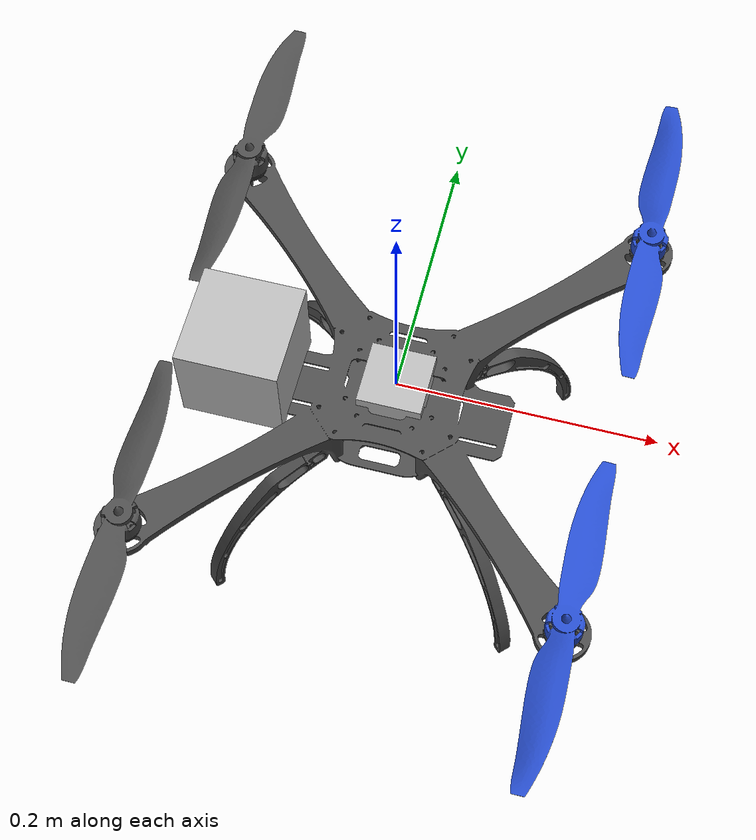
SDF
<sdf version='1.5'>
  <model name='lezl_lidar'>

    <include>
      <uri>model://lezl</uri>
    </include>

    <include>
      <uri>model://camera</uri>
      <pose>0.0 0.0 0 0 1.5708 1.5708</pose>
    </include>

    <joint name="camera_joint" type="revolute">
      <child>camera::link</child>
      <parent>lezl::base_link</parent>
      <axis>
        <xyz>0 0 1</xyz>
        <limit>
          <upper>0</upper>
          <lower>0</lower>
        </limit>
      </axis>
    </joint>

    <include>
      <uri>model://lidar</uri>
      <pose>-0.12 0 0 0 3.1415 0</pose>
    </include>
    <joint name="lidar_joint" type="revolute">
	  <child>lidar::link</child>
	  <parent>iris::base_link</parent>
	  <axis>
	    <xyz>0 0 1</xyz>
	    <limit>
		  <upper>0</upper>
		  <lower>0</lower>
		</limit>
	  </axis>
	</joint>

  </model>
</sdf>

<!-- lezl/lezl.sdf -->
<sdf version='1.6'>
  <model name='lezl'>
    <link name='base_link'>
      <pose frame=''>0 0 0 0 -0 0</pose>
      <inertial>
        <pose frame=''>0 0 0 0 -0 0</pose>
        <mass>1.5</mass>
        <inertia>
          <ixx>0.0347563</ixx>
          <ixy>0</ixy>
          <ixz>0</ixz>
          <iyy>0.0458929</iyy>
          <iyz>0</iyz>
          <izz>0.0977</izz>
        </inertia>
      </inertial>
      <collision name='base_link_inertia_collision'>
        <pose frame=''>0 0 0 0 -0 0</pose>
        <geometry>
          <box>
            <size>0.47 0.47 0.37</size>
          </box>
        </geometry>
        <surface>
          <contact>
            <ode>
              <min_depth>0.001</min_depth>
              <max_vel>0</max_vel>
            </ode>
          </contact>
          <friction>
            <ode/>
          </friction>
        </surface>
      </collision>
      <visual name='base_link_inertia_visual'>
        <pose frame=''>0.018 -0.0265 0 1.57 -0 0</pose>
        <geometry>
          <mesh>
            <scale>0.001 0.001 0.001</scale>
            <uri>model://lezl/meshes/f450_frame.stl</uri>
          </mesh>
        </geometry>
        <material>
          <script>
            <name>Gazebo/DarkGrey</name>
            <uri>file://media/materials/scripts/gazebo.material</uri>
          </script>
        </material>
      </visual>
      <gravity>1</gravity>
      <velocity_decay/>
      <self_collide>0</self_collide>
    </link>
    <link name='/imu_link'>
      <pose frame=''>0 0 0 0 -0 0</pose>
      <inertial>
        <pose frame=''>0 0 0 0 -0 0</pose>
        <mass>0.015</mass>
        <inertia>
          <ixx>1e-05</ixx>
          <ixy>0</ixy>
          <ixz>0</ixz>
          <iyy>1e-05</iyy>
          <iyz>0</iyz>
          <izz>1e-05</izz>
        </inertia>
      </inertial>
    </link>
    <joint name='/imu_joint' type='revolute'>
      <child>/imu_link</child>
      <parent>base_link</parent>
      <axis>
        <xyz>1 0 0</xyz>
        <limit>
          <lower>0</lower>
          <upper>0</upper>
          <effort>0</effort>
          <velocity>0</velocity>
        </limit>
        <dynamics>
          <spring_reference>0</spring_reference>
          <spring_stiffness>0</spring_stiffness>
        </dynamics>
        <use_parent_model_frame>1</use_parent_model_frame>
      </axis>
    </joint>
    <link name='rotor_0'>
      <pose frame=''>0.162 -0.162 0.007 0 -0 0</pose>
      <inertial>
        <pose frame=''>0 0 0 0 -0 0</pose>
        <mass>0.005</mass>
        <inertia>
          <ixx>9.75e-07</ixx>
          <ixy>0</ixy>
          <ixz>0</ixz>
          <iyy>0.000273104</iyy>
          <iyz>0</iyz>
          <izz>0.000274004</izz>
        </inertia>
      </inertial>
      <collision name='rotor_0_collision'>
        <pose frame=''>0 0 0 0 -0 0</pose>
        <geometry>
          <cylinder>
            <length>0.005</length>
            <radius>0.128</radius>
          </cylinder>
        </geometry>
        <surface>
          <contact>
            <ode/>
          </contact>
          <friction>
            <ode/>
          </friction>
        </surface>
      </collision>
      <visual name='rotor_0_visual'>
        <pose frame=''>0 0 0 1.57 -0 0</pose>
        <geometry>
          <mesh>
            <scale>0.001 0.001 0.001</scale>
            <uri>model://lezl/meshes/f450_prop_ccw.stl</uri>
          </mesh>
        </geometry>
        <material>
          <script>
            <name>Gazebo/Blue</name>
            <uri>file://media/materials/scripts/gazebo.material</uri>
          </script>
        </material>
      </visual>
      <gravity>1</gravity>
      <velocity_decay/>
      <self_collide>0</self_collide>
    </link>
    <joint name='rotor_0_joint' type='revolute'>
      <child>rotor_0</child>
      <parent>base_link</parent>
      <axis>
        <xyz>0 0 1</xyz>
        <limit>
          <lower>-1e+16</lower>
          <upper>1e+16</upper>
        </limit>
        <dynamics>
          <spring_reference>0</spring_reference>
          <spring_stiffness>0</spring_stiffness>
        </dynamics>
        <use_parent_model_frame>1</use_parent_model_frame>
      </axis>
    </joint>
    <link name='rotor_1'>
      <pose frame=''>-0.162 0.162 0.007 0 -0 0</pose>
      <inertial>
        <pose frame=''>0 0 0 0 -0 0</pose>
        <mass>0.005</mass>
        <inertia>
          <ixx>9.75e-07</ixx>
          <ixy>0</ixy>
          <ixz>0</ixz>
          <iyy>0.000273104</iyy>
          <iyz>0</iyz>
          <izz>0.000274004</izz>
        </inertia>
      </inertial>
      <collision name='rotor_1_collision'>
        <pose frame=''>0 0 0 0 -0 0</pose>
        <geometry>
          <cylinder>
            <length>0.005</length>
            <radius>0.128</radius>
          </cylinder>
        </geometry>
        <surface>
          <contact>
            <ode/>
          </contact>
          <friction>
            <ode/>
          </friction>
        </surface>
      </collision>
      <visual name='rotor_1_visual'>
        <pose frame=''>0 0 0 1.57 -0 0</pose>
        <geometry>
          <mesh>
            <scale>0.001 0.001 0.001</scale>
            <uri>model://lezl/meshes/f450_prop_ccw.stl</uri>
          </mesh>
        </geometry>
        <material>
          <script>
            <name>Gazebo/DarkGrey</name>
            <uri>file://media/materials/scripts/gazebo.material</uri>
          </script>
        </material>
      </visual>
      <gravity>1</gravity>
      <velocity_decay/>
      <self_collide>0</self_collide>
    </link>
    <joint name='rotor_1_joint' type='revolute'>
      <child>rotor_1</child>
      <parent>base_link</parent>
      <axis>
        <xyz>0 0 1</xyz>
        <limit>
          <lower>-1e+16</lower>
          <upper>1e+16</upper>
        </limit>
        <dynamics>
          <spring_reference>0</spring_reference>
          <spring_stiffness>0</spring_stiffness>
        </dynamics>
        <use_parent_model_frame>1</use_parent_model_frame>
      </axis>
    </joint>
    <link name='rotor_2'>
      <pose frame=''>0.162 0.162 0.007 0 -0 0</pose>
      <inertial>
        <pose frame=''>0 0 0 0 -0 0</pose>
        <mass>0.005</mass>
        <inertia>
          <ixx>9.75e-07</ixx>
          <ixy>0</ixy>
          <ixz>0</ixz>
          <iyy>0.000273104</iyy>
          <iyz>0</iyz>
          <izz>0.000274004</izz>
        </inertia>
      </inertial>
      <collision name='rotor_2_collision'>
        <pose frame=''>0 0 0 0 -0 0</pose>
        <geometry>
          <cylinder>
            <length>0.005</length>
            <radius>0.128</radius>
          </cylinder>
        </geometry>
        <surface>
          <contact>
            <ode/>
          </contact>
          <friction>
            <ode/>
          </friction>
        </surface>
      </collision>
      <visual name='rotor_2_visual'>
        <pose frame=''>0 0 0 1.57 -0 0</pose>
        <geometry>
          <mesh>
            <scale>0.001 0.001 0.001</scale>
            <uri>model://lezl/meshes/f450_prop_cw.stl</uri>
          </mesh>
        </geometry>
        <material>
          <script>
            <name>Gazebo/Blue</name>
            <uri>file://media/materials/scripts/gazebo.material</uri>
          </script>
        </material>
      </visual>
      <gravity>1</gravity>
      <velocity_decay/>
      <self_collide>0</self_collide>
    </link>
    <joint name='rotor_2_joint' type='revolute'>
      <child>rotor_2</child>
      <parent>base_link</parent>
      <axis>
        <xyz>0 0 1</xyz>
        <limit>
          <lower>-1e+16</lower>
          <upper>1e+16</upper>
        </limit>
        <dynamics>
          <spring_reference>0</spring_reference>
          <spring_stiffness>0</spring_stiffness>
        </dynamics>
        <use_parent_model_frame>1</use_parent_model_frame>
      </axis>
    </joint>
    <link name='rotor_3'>
      <pose frame=''>-0.162 -0.162 0.007 0 -0 0</pose>
      <inertial>
        <pose frame=''>0 0 0 0 -0 0</pose>
        <mass>0.005</mass>
        <inertia>
          <ixx>9.75e-07</ixx>
          <ixy>0</ixy>
          <ixz>0</ixz>
          <iyy>0.000273104</iyy>
          <iyz>0</iyz>
          <izz>0.000274004</izz>
        </inertia>
      </inertial>
      <collision name='rotor_3_collision'>
        <pose frame=''>0 0 0 0 -0 0</pose>
        <geometry>
          <cylinder>
            <length>0.005</length>
            <radius>0.128</radius>
          </cylinder>
        </geometry>
        <surface>
          <contact>
            <ode/>
          </contact>
          <friction>
            <ode/>
          </friction>
        </surface>
      </collision>
      <visual name='rotor_3_visual'>
        <pose frame=''>0 0 0 1.57 -0 0</pose>
        <geometry>
          <mesh>
            <scale>0.001 0.001 0.001</scale>
            <uri>model://lezl/meshes/f450_prop_cw.stl</uri>
          </mesh>
        </geometry>
        <material>
          <script>
            <name>Gazebo/DarkGrey</name>
            <uri>file://media/materials/scripts/gazebo.material</uri>
          </script>
        </material>
      </visual>
      <gravity>1</gravity>
      <velocity_decay/>
      <self_collide>0</self_collide>
    </link>
    <joint name='rotor_3_joint' type='revolute'>
      <child>rotor_3</child>
      <parent>base_link</parent>
      <axis>
        <xyz>0 0 1</xyz>
        <limit>
          <lower>-1e+16</lower>
          <upper>1e+16</upper>
        </limit>
        <dynamics>
          <spring_reference>0</spring_reference>
          <spring_stiffness>0</spring_stiffness>
        </dynamics>
        <use_parent_model_frame>1</use_parent_model_frame>
      </axis>
    </joint>
    <plugin name='rosbag' filename='librotors_gazebo_multirotor_base_plugin.so'>
      <robotNamespace/>
      <linkName>base_link</linkName>
      <rotorVelocitySlowdownSim>10</rotorVelocitySlowdownSim>
    </plugin>
    <plugin name='front_right_motor_model' filename='librotors_gazebo_motor_model.so'>
      <robotNamespace/>
      <jointName>rotor_0_joint</jointName>
      <linkName>rotor_0</linkName>
      <turningDirection>ccw</turningDirection>
      <timeConstantUp>0.0125</timeConstantUp>
      <timeConstantDown>0.025</timeConstantDown>
      <maxRotVelocity>1100</maxRotVelocity>
      <motorConstant>8.54858e-06</motorConstant>
      <momentConstant>0.06</momentConstant>
      <commandSubTopic>/gazebo/command/motor_speed</commandSubTopic>
      <motorNumber>0</motorNumber>
      <rotorDragCoefficient>0.000806428</rotorDragCoefficient>
      <rollingMomentCoefficient>1e-06</rollingMomentCoefficient>
      <motorSpeedPubTopic>/motor_speed/0</motorSpeedPubTopic>
      <rotorVelocitySlowdownSim>10</rotorVelocitySlowdownSim>
    </plugin>
    <plugin name='back_left_motor_model' filename='librotors_gazebo_motor_model.so'>
      <robotNamespace/>
      <jointName>rotor_1_joint</jointName>
      <linkName>rotor_1</linkName>
      <turningDirection>ccw</turningDirection>
      <timeConstantUp>0.0125</timeConstantUp>
      <timeConstantDown>0.025</timeConstantDown>
      <maxRotVelocity>1100</maxRotVelocity>
      <motorConstant>8.54858e-06</motorConstant>
      <momentConstant>0.06</momentConstant>
      <commandSubTopic>/gazebo/command/motor_speed</commandSubTopic>
      <motorNumber>1</motorNumber>
      <rotorDragCoefficient>0.000806428</rotorDragCoefficient>
      <rollingMomentCoefficient>1e-06</rollingMomentCoefficient>
      <motorSpeedPubTopic>/motor_speed/1</motorSpeedPubTopic>
      <rotorVelocitySlowdownSim>10</rotorVelocitySlowdownSim>
    </plugin>
    <plugin name='front_left_motor_model' filename='librotors_gazebo_motor_model.so'>
      <robotNamespace/>
      <jointName>rotor_2_joint</jointName>
      <linkName>rotor_2</linkName>
      <turningDirection>cw</turningDirection>
      <timeConstantUp>0.0125</timeConstantUp>
      <timeConstantDown>0.025</timeConstantDown>
      <maxRotVelocity>1100</maxRotVelocity>
      <motorConstant>8.54858e-06</motorConstant>
      <momentConstant>0.06</momentConstant>
      <commandSubTopic>/gazebo/command/motor_speed</commandSubTopic>
      <motorNumber>2</motorNumber>
      <rotorDragCoefficient>0.000806428</rotorDragCoefficient>
      <rollingMomentCoefficient>1e-06</rollingMomentCoefficient>
      <motorSpeedPubTopic>/motor_speed/2</motorSpeedPubTopic>
      <rotorVelocitySlowdownSim>10</rotorVelocitySlowdownSim>
    </plugin>
    <plugin name='back_right_motor_model' filename='librotors_gazebo_motor_model.so'>
      <robotNamespace/>
      <jointName>rotor_3_joint</jointName>
      <linkName>rotor_3</linkName>
      <turningDirection>cw</turningDirection>
      <timeConstantUp>0.0125</timeConstantUp>
      <timeConstantDown>0.025</timeConstantDown>
      <maxRotVelocity>1100</maxRotVelocity>
      <motorConstant>8.54858e-06</motorConstant>
      <momentConstant>0.06</momentConstant>
      <commandSubTopic>/gazebo/command/motor_speed</commandSubTopic>
      <motorNumber>3</motorNumber>
      <rotorDragCoefficient>0.000806428</rotorDragCoefficient>
      <rollingMomentCoefficient>1e-06</rollingMomentCoefficient>
      <motorSpeedPubTopic>/motor_speed/3</motorSpeedPubTopic>
      <rotorVelocitySlowdownSim>10</rotorVelocitySlowdownSim>
    </plugin>
    <plugin name='mavlink_interface' filename='librotors_gazebo_mavlink_interface.so'>
      <robotNamespace/>
      <imuSubTopic>/imu</imuSubTopic>
      <mavlink_addr>INADDR_ANY</mavlink_addr>
      <mavlink_udp_port>14560</mavlink_udp_port>
      <motorSpeedCommandPubTopic>/gazebo/command/motor_speed</motorSpeedCommandPubTopic>
      <control_channels>
        <channel name='rotor1'>
          <input_index>0</input_index>
          <input_offset>0</input_offset>
          <input_scaling>1000</input_scaling>
          <zero_position_disarmed>0</zero_position_disarmed>
          <zero_position_armed>100</zero_position_armed>
          <joint_control_type>velocity</joint_control_type>
          <joint_name>rotor_0_joint</joint_name>
        </channel>
        <channel name='rotor2'>
          <input_index>1</input_index>
          <input_offset>0</input_offset>
          <input_scaling>1000</input_scaling>
          <zero_position_disarmed>0</zero_position_disarmed>
          <zero_position_armed>100</zero_position_armed>
          <joint_control_type>velocity</joint_control_type>
          <joint_name>rotor_1_joint</joint_name>
        </channel>
        <channel name='rotor3'>
          <input_index>2</input_index>
          <input_offset>0</input_offset>
          <input_scaling>1000</input_scaling>
          <zero_position_disarmed>0</zero_position_disarmed>
          <zero_position_armed>100</zero_position_armed>
          <joint_control_type>velocity</joint_control_type>
          <joint_name>rotor_2_joint</joint_name>
        </channel>
        <channel name='rotor4'>
          <input_index>3</input_index>
          <input_offset>0</input_offset>
          <input_scaling>1000</input_scaling>
          <zero_position_disarmed>0</zero_position_disarmed>
          <zero_position_armed>100</zero_position_armed>
          <joint_control_type>velocity</joint_control_type>
          <joint_name>rotor_3_joint</joint_name>
        </channel>
        <channel name="gimbal_roll">
          <input_index>4</input_index>
          <input_offset>0</input_offset>
          <input_scaling>-3.1415</input_scaling>
          <zero_position_disarmed>0</zero_position_disarmed>
          <zero_position_armed>0</zero_position_armed>
          <joint_control_type>position_gztopic</joint_control_type>
          <gztopic>/gimbal_roll_cmd</gztopic>
          <joint_name>camera_gimbal::cgo3_camera_joint</joint_name>
        </channel>
        <channel name="gimbal_pitch">
          <input_index>5</input_index>
          <input_offset>0</input_offset>
          <input_scaling>3.1415</input_scaling>
          <zero_position_disarmed>0</zero_position_disarmed>
          <zero_position_armed>0</zero_position_armed>
          <joint_control_type>position_gztopic</joint_control_type>
          <gztopic>/gimbal_pitch_cmd</gztopic>
          <joint_name>camera_gimbal::cgo3_camera_joint</joint_name>
        </channel>
      </control_channels>
    </plugin>
    <static>0</static>
    <plugin name='rotors_gazebo_imu_plugin' filename='librotors_gazebo_imu_plugin.so'>
      <robotNamespace/>
      <linkName>/imu_link</linkName>
      <imuTopic>/imu</imuTopic>
      <gyroscopeNoiseDensity>0.0003394</gyroscopeNoiseDensity>
      <gyroscopeRandomWalk>3.8785e-05</gyroscopeRandomWalk>
      <gyroscopeBiasCorrelationTime>1000.0</gyroscopeBiasCorrelationTime>
      <gyroscopeTurnOnBiasSigma>0.0087</gyroscopeTurnOnBiasSigma>
      <accelerometerNoiseDensity>0.004</accelerometerNoiseDensity>
      <accelerometerRandomWalk>0.006</accelerometerRandomWalk>
      <accelerometerBiasCorrelationTime>300.0</accelerometerBiasCorrelationTime>
      <accelerometerTurnOnBiasSigma>0.196</accelerometerTurnOnBiasSigma>
    </plugin>

  </model>
</sdf>

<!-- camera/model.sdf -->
<sdf version="1.4">
  <model name="camera">
    <link name="camera_link">
      <inertial>
        <pose>0 0 -0.162 0 -0 0</pose>
        <mass>0.01</mass>
        <inertia>
          <ixx>4.15e-6</ixx>
          <ixy>0</ixy>
          <ixz>0</ixz>
          <iyy>2.407e-6</iyy>
          <iyz>0</iyz>
          <izz>2.407e-6</izz>
        </inertia>
      </inertial>
      <visual name="visual">
        <geometry>
          <box>
            <size>0.02 0.05 0.05</size>
          </box>
        </geometry>
      </visual>
      <sensor name="lezl_cam_imu" type="imu">
        <always_on>1</always_on>
      </sensor>
      <sensor name="camera1" type="camera">
        <camera>
          <horizontal_fov>0.84479790990252</horizontal_fov>
          <image>
            <width>480</width>
            <height>480</height>
          </image>
          <clip>
            <near>0.1</near>
            <far>100</far>
          </clip>
          <noise>
            <type>gaussian</type>
            <mean>0.0</mean>
            <stddev>0.001</stddev>
          </noise>
        </camera>
    <plugin name="camera_controller" filename="libgazebo_ros_camera.so">
        <alwaysOn>true</alwaysOn>
        <updateRate>30.0</updateRate>
        <cameraName>camera1</cameraName>
        <imageTopicName>image_raw</imageTopicName>
        <cameraInfoTopicName>camera_info</cameraInfoTopicName>
        <frameName>camera_link</frameName>
        <hackBaseline>0.07</hackBaseline>
        <distortionK1>0.0</distortionK1>
        <distortionK2>0.0</distortionK2>
        <distortionK3>0.0</distortionK3>
        <distortionT1>0.0</distortionT1>
        <distortionT2>0.0</distortionT2>
      </plugin>
      </sensor>
    </link>
  </model>
</sdf>

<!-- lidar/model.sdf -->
<sdf version='1.6'>
  <model name='lidar'>
    <link name='link'>
      <inertial>
        <mass>0.1</mass>
        <inertia>
          <ixx>0.17</ixx>
          <ixy>0.00</ixy>
          <ixz>0.00</ixz>
          <iyy>0.17</iyy>
          <iyz>0.00</iyz>
          <izz>0.17</izz>
        </inertia>
      </inertial>
      <pose frame=''>0 0 0 0 -0 0</pose>
      <visual name='visual'>
        <pose frame=''>0 0 0 0 -0 0</pose>
        <geometry>
          <mesh>
            <uri>model://laser_robot/lidar/meshes/lidar.obj</uri>
            <scale>1 1 1</scale>
          </mesh>
        </geometry>
        <transparency>0</transparency>
        <cast_shadows>1</cast_shadows>
      </visual>
      <collision name='collision'>
        <laser_retro>0</laser_retro>
        <max_contacts>10</max_contacts>
        <pose frame=''>0 0 0.05 0 -0 0</pose>
        <geometry>
          <mesh>
            <uri>model://laser_robot/lidar/meshes/lidar.obj</uri>
            <scale>1 1 1</scale>
          </mesh>
        </geometry>
        <surface>
          <friction>
            <ode>
              <mu>1</mu>
              <mu2>1</mu2>
              <fdir1>0 0 0</fdir1>
              <slip1>0</slip1>
              <slip2>0</slip2>
            </ode>
            <torsional>
              <coefficient>1</coefficient>
              <patch_radius>1</patch_radius>
              <surface_radius>1</surface_radius>
              <use_patch_radius>1</use_patch_radius>
              <ode>
                <slip>0</slip>
              </ode>
            </torsional>
          </friction>
          <bounce>
            <restitution_coefficient>1</restitution_coefficient>
            <threshold>1e+06</threshold>
          </bounce>
          <contact>
            <collide_without_contact>0</collide_without_contact>
            <collide_without_contact_bitmask>1</collide_without_contact_bitmask>
            <collide_bitmask>1</collide_bitmask>
            <ode>
              <soft_cfm>0</soft_cfm>
              <soft_erp>0.2</soft_erp>
              <kp>1e+13</kp>
              <kd>1</kd>
              <max_vel>0.01</max_vel>
              <min_depth>0</min_depth>
            </ode>
            <bullet>
              <split_impulse>1</split_impulse>
              <split_impulse_penetration_threshold>-0.01</split_impulse_penetration_threshold>
              <soft_cfm>0</soft_cfm>
              <soft_erp>0.2</soft_erp>
              <kp>1e+13</kp>
              <kd>1</kd>
            </bullet>
          </contact>
        </surface>
      </collision>
    </link>
    <static>0</static>
    <allow_auto_disable>1</allow_auto_disable>
  </model>
</sdf>
